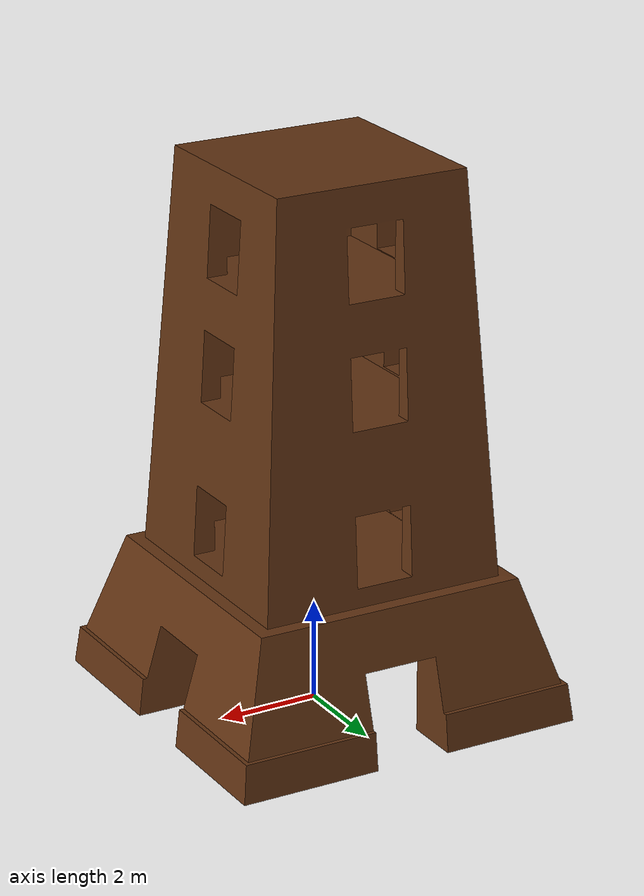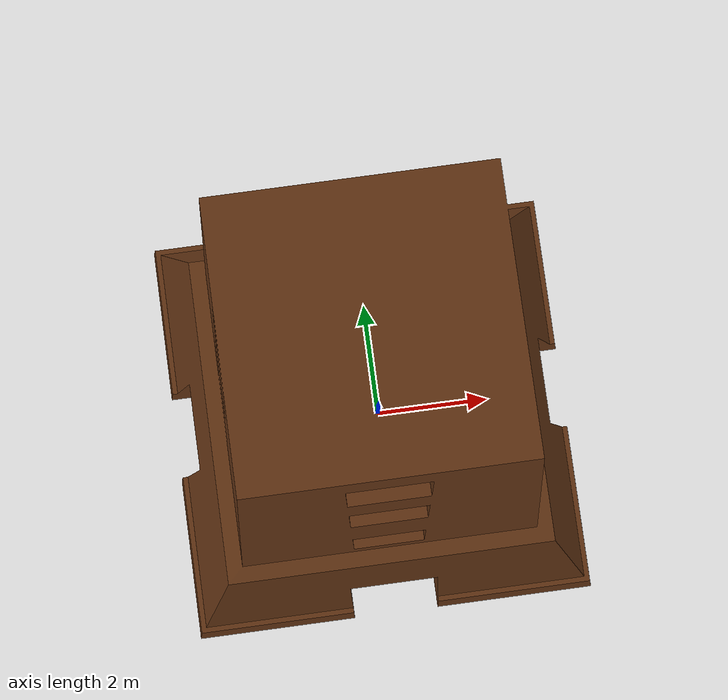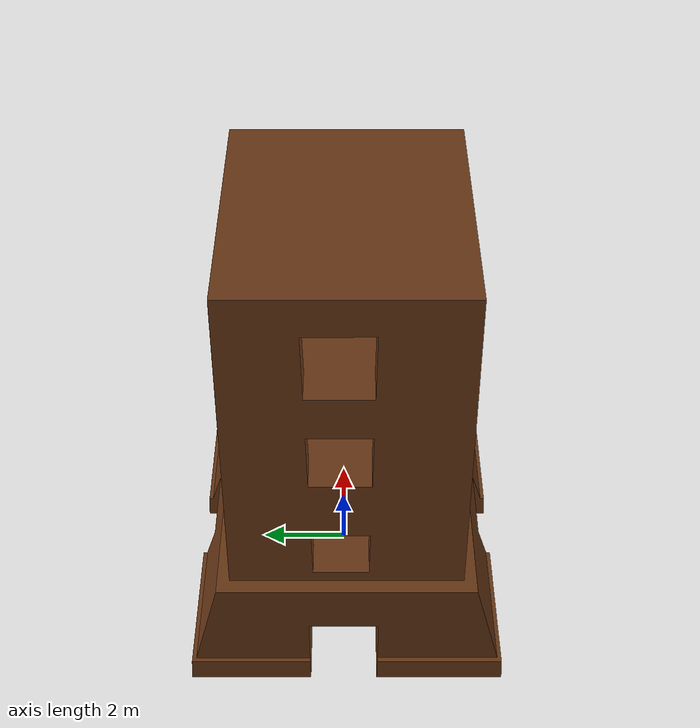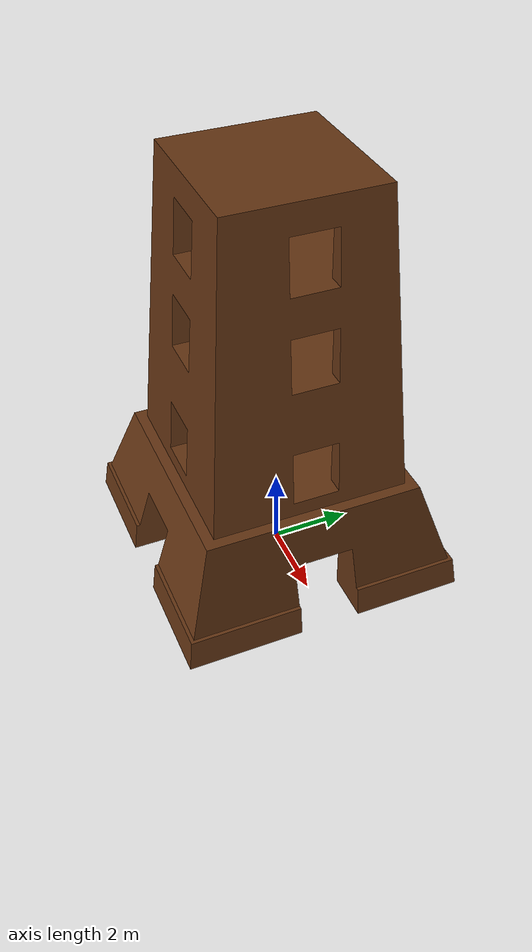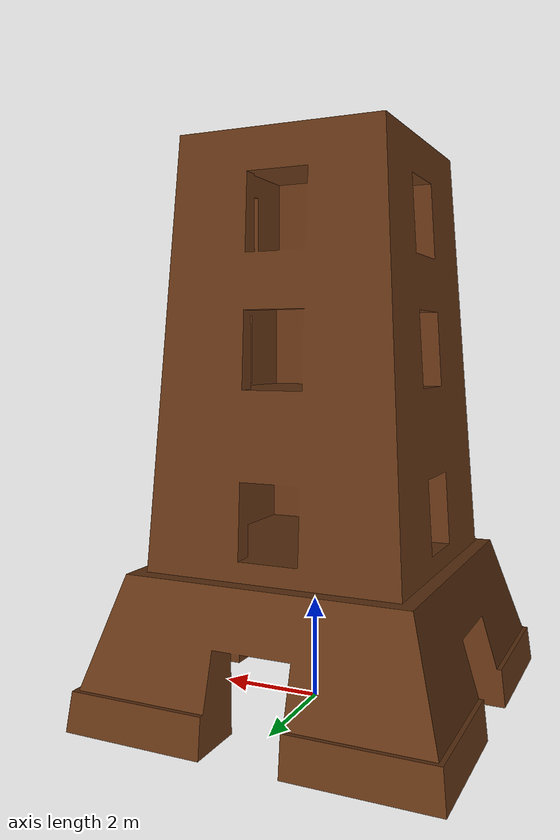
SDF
<?xml version="1.0" ?>
<sdf version="1.5">
  <model name="MBZIRC_challenge3">
    <static>true</static>
    <link name="link">
      <pose>0 0 0.115 0 0 0</pose>
      <collision name="collision">
        <geometry>
          <mesh>
            <uri>model://MBZIRC_tower/meshes/MBZIRC_tower.dae</uri>
          </mesh>
        </geometry>
      </collision>
      <visual name="visual">
        <geometry>
          <mesh>
            <uri>model://MBZIRC_tower/meshes/MBZIRC_tower.dae</uri>
          </mesh>
        </geometry>
      </visual>
    </link>
  </model>
</sdf>
